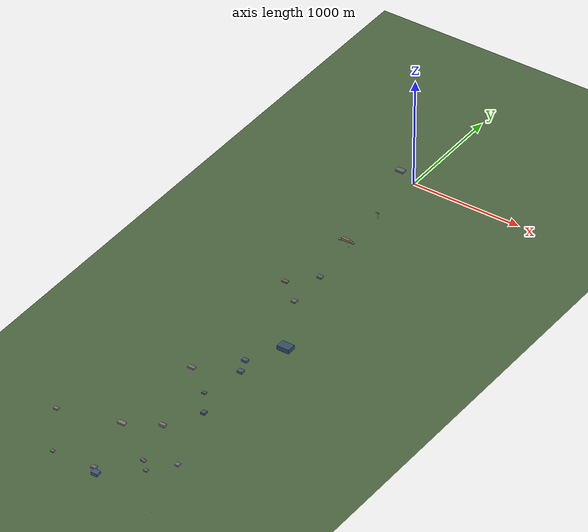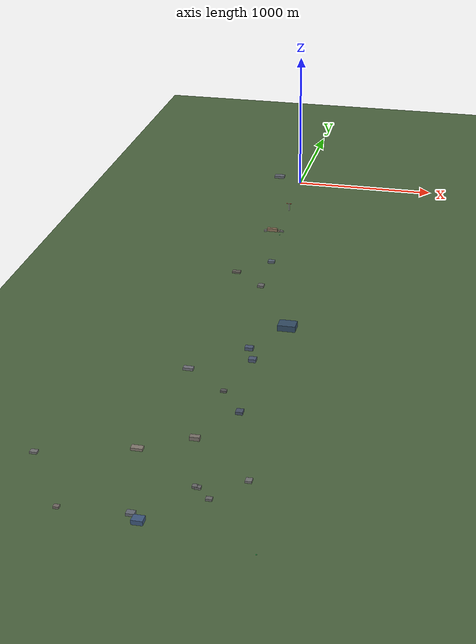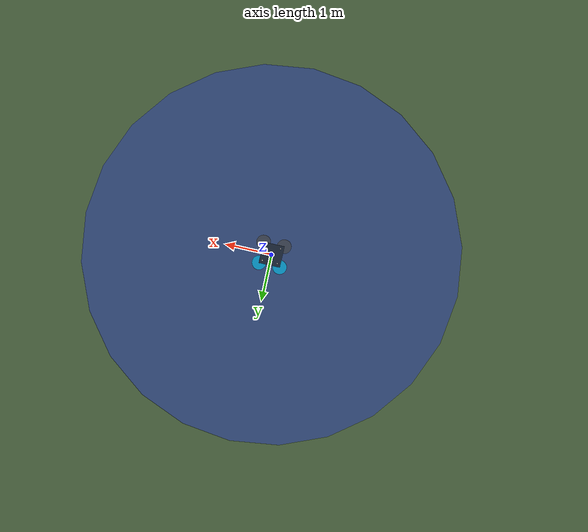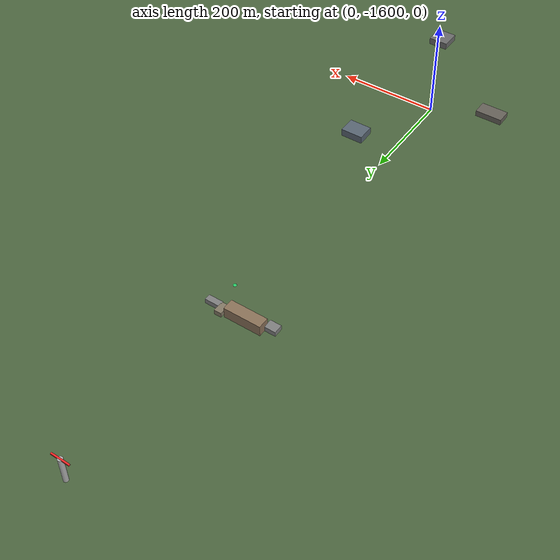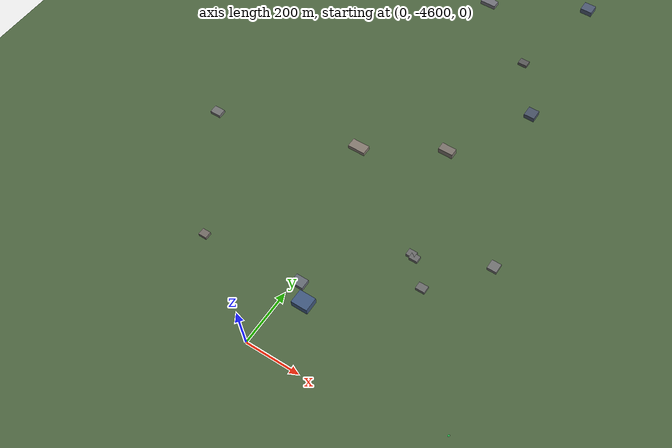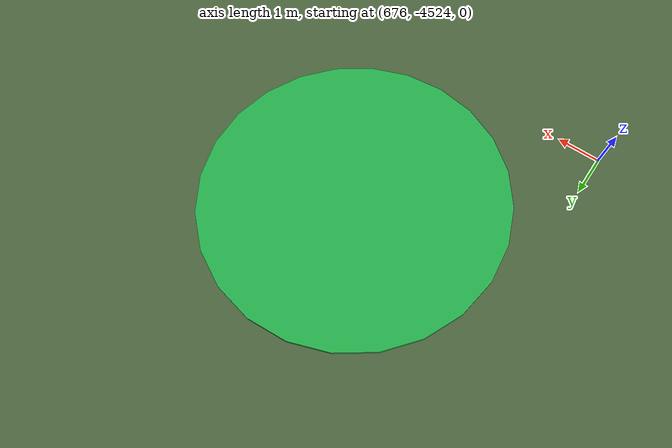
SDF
<?xml version="1.0" ?>
<sdf version="1.8">
  <world name="skynav_kurumbapalayam">
    <physics name="1ms" type="ode">
      <max_step_size>0.001</max_step_size>
      <real_time_factor>1.0</real_time_factor>
      <real_time_update_rate>1000</real_time_update_rate>
      <ode>
        <solver>
          <type>quick</type>
          <iters>50</iters>
          <sor>1.3</sor>
        </solver>
        <constraints>
          <cfm>0.0</cfm>
          <erp>0.2</erp>
          <contact_max_correcting_vel>100.0</contact_max_correcting_vel>
          <contact_surface_layer>0.001</contact_surface_layer>
        </constraints>
      </ode>
    </physics>

    <!-- Standard Gazebo System Plugins -->
    <plugin filename="gz-sim-physics-system" name="gz::sim::systems::Physics"/>
    <plugin filename="gz-sim-user-commands-system" name="gz::sim::systems::UserCommands"/>
    <plugin filename="gz-sim-scene-broadcaster-system" name="gz::sim::systems::SceneBroadcaster"/>
    <plugin filename="gz-sim-sensors-system" name="gz::sim::systems::Sensors">
      <render_engine>ogre2</render_engine>
    </plugin>
    <plugin filename="gz-sim-imu-system" name="gz::sim::systems::Imu"/>
    <plugin filename="gz-sim-navsat-system" name="gz::sim::systems::NavSat"/>
    <plugin filename="gz-sim-altimeter-system" name="gz::sim::systems::Altimeter"/>

    <!-- Geographic Origin: SkyHub Kurumbapalayam, Coimbatore, India -->
    <spherical_coordinates>
      <surface_model>EARTH_WGS84</surface_model>
      <latitude_deg>11.113200</latitude_deg>
      <longitude_deg>77.027700</longitude_deg>
      <elevation>374.0</elevation>
      <heading_deg>0.0</heading_deg>
    </spherical_coordinates>

    <!-- Sun Lighting -->
    <light type="directional" name="sun">
      <cast_shadows>true</cast_shadows>
      <pose>0 0 500 0.3 0.6 0</pose>
      <diffuse>0.9 0.9 0.85 1</diffuse>
      <specular>0.2 0.2 0.2 1</specular>
      <attenuation>
        <range>1000</range>
        <constant>0.9</constant>
        <linear>0.01</linear>
        <quadratic>0.001</quadratic>
      </attenuation>
      <direction>-0.4 0.2 -1.0</direction>
    </light>

    <!-- Ground Plane (Coimbatore Kurumbapalayam Base Elevation) -->
    <model name="kurumbapalayam_ground">
      <static>true</static>
      <link name="ground_link">
        <collision name="ground_collision">
          <geometry>
            <plane>
              <normal>0 0 1</normal>
              <size>10000 10000</size>
            </plane>
          </geometry>
          <surface>
            <friction>
              <ode>
                <mu>100</mu>
                <mu2>50</mu2>
              </ode>
            </friction>
          </surface>
        </collision>
        <visual name="ground_visual">
          <geometry>
            <plane>
              <normal>0 0 1</normal>
              <size>10000 10000</size>
            </plane>
          </geometry>
          <material>
            <ambient>0.25 0.35 0.22 1.0</ambient>
            <diffuse>0.3 0.4 0.25 1.0</diffuse>
          </material>
        </visual>
      </link>
    </model>

    <!-- SkyHub Kurumbapalayam Launch & Docking Base -->
    <model name="skyhub_launch_docking_pad">
      <static>true</static>
      <pose>0 0 0.1 0 0 0</pose>
      <link name="pad_link">
        <collision name="pad_col">
          <geometry>
            <cylinder>
              <radius>4.0</radius>
              <length>0.2</length>
            </cylinder>
          </geometry>
        </collision>
        <visual name="pad_vis">
          <geometry>
            <cylinder>
              <radius>4.0</radius>
              <length>0.2</length>
            </cylinder>
          </geometry>
          <material>
            <ambient>0.1 0.15 0.25 1.0</ambient>
            <diffuse>0.2 0.3 0.5 1.0</diffuse>
          </material>
        </visual>
      </link>
    </model>

    <!-- Autonomous SkyNav Delivery UAV (Spawned on SkyHub Kurumbapalayam Launch Pad) -->
    <include>
      <uri>model://skynav_quad</uri>
      <name>skynav_quad</name>
      <pose>0 0 0.25 0 0 0</pose>
    </include>

    <!-- OSM Building: osm_building_kurumbapalayam_logistics (Footprint: 75m x 45m, Height: 18m) -->
    <model name="osm_building_kurumbapalayam_logistics">
      <static>true</static>
      <pose>-180 80 9 0 0 0</pose>
      <link name="link">
        <collision name="col">
          <geometry>
            <box>
              <size>75 45 18</size>
            </box>
          </geometry>
        </collision>
        <visual name="vis">
          <geometry>
            <box>
              <size>75 45 18</size>
            </box>
          </geometry>
          <material>
            <ambient>0.4 0.42 0.45 1</ambient>
            <diffuse>0.4 0.42 0.45 1</diffuse>
          </material>
        </visual>
      </link>
    </model>
    <!-- OSM Building: osm_building_kvimis_campus (Footprint: 73m x 22m, Height: 22m) -->
    <model name="osm_building_kvimis_campus">
      <static>true</static>
      <pose>-19 -939 11 0 0 0</pose>
      <link name="link">
        <collision name="col">
          <geometry>
            <box>
              <size>73 22 22</size>
            </box>
          </geometry>
        </collision>
        <visual name="vis">
          <geometry>
            <box>
              <size>73 22 22</size>
            </box>
          </geometry>
          <material>
            <ambient>0.55 0.45 0.35 1</ambient>
            <diffuse>0.55 0.45 0.35 1</diffuse>
          </material>
        </visual>
      </link>
    </model>
    <!-- OSM Building: osm_building_kvimis_hostel_east (Footprint: 29m x 12m, Height: 10m) -->
    <model name="osm_building_kvimis_hostel_east">
      <static>true</static>
      <pose>48 -941 5 0 0 0</pose>
      <link name="link">
        <collision name="col">
          <geometry>
            <box>
              <size>29 12 10</size>
            </box>
          </geometry>
        </collision>
        <visual name="vis">
          <geometry>
            <box>
              <size>29 12 10</size>
            </box>
          </geometry>
          <material>
            <ambient>0.5 0.5 0.5 1</ambient>
            <diffuse>0.5 0.5 0.5 1</diffuse>
          </material>
        </visual>
      </link>
    </model>
    <!-- OSM Building: osm_building_kvimis_cafeteria (Footprint: 14m x 22m, Height: 10m) -->
    <model name="osm_building_kvimis_cafeteria">
      <static>true</static>
      <pose>28 -935 5 0 0 0</pose>
      <link name="link">
        <collision name="col">
          <geometry>
            <box>
              <size>14 22 10</size>
            </box>
          </geometry>
        </collision>
        <visual name="vis">
          <geometry>
            <box>
              <size>14 22 10</size>
            </box>
          </geometry>
          <material>
            <ambient>0.52 0.48 0.4 1</ambient>
            <diffuse>0.52 0.48 0.4 1</diffuse>
          </material>
        </visual>
      </link>
    </model>
    <!-- OSM Building: osm_building_kvimis_hostel_west (Footprint: 22m x 18m, Height: 10m) -->
    <model name="osm_building_kvimis_hostel_west">
      <static>true</static>
      <pose>-66 -950 5 0 0 0</pose>
      <link name="link">
        <collision name="col">
          <geometry>
            <box>
              <size>22 18 10</size>
            </box>
          </geometry>
        </collision>
        <visual name="vis">
          <geometry>
            <box>
              <size>22 18 10</size>
            </box>
          </geometry>
          <material>
            <ambient>0.5 0.5 0.5 1</ambient>
            <diffuse>0.5 0.5 0.5 1</diffuse>
          </material>
        </visual>
      </link>
    </model>
    <!-- OSM Building: osm_building_sh165_transit_hub (Footprint: 45m x 35m, Height: 15m) -->
    <model name="osm_building_sh165_transit_hub">
      <static>true</static>
      <pose>85 -1450 7.5 0 0 0</pose>
      <link name="link">
        <collision name="col">
          <geometry>
            <box>
              <size>45 35 15</size>
            </box>
          </geometry>
        </collision>
        <visual name="vis">
          <geometry>
            <box>
              <size>45 35 15</size>
            </box>
          </geometry>
          <material>
            <ambient>0.35 0.4 0.45 1</ambient>
            <diffuse>0.35 0.4 0.45 1</diffuse>
          </material>
        </visual>
      </link>
    </model>
    <!-- OSM Building: osm_building_annur_road_logistics (Footprint: 55m x 30m, Height: 12m) -->
    <model name="osm_building_annur_road_logistics">
      <static>true</static>
      <pose>-110 -1650 6 0 0 0</pose>
      <link name="link">
        <collision name="col">
          <geometry>
            <box>
              <size>55 30 12</size>
            </box>
          </geometry>
        </collision>
        <visual name="vis">
          <geometry>
            <box>
              <size>55 30 12</size>
            </box>
          </geometry>
          <material>
            <ambient>0.4 0.38 0.35 1</ambient>
            <diffuse>0.4 0.38 0.35 1</diffuse>
          </material>
        </visual>
      </link>
    </model>
    <!-- OSM Building: osm_building_suburban_depot (Footprint: 40m x 40m, Height: 14m) -->
    <model name="osm_building_suburban_depot">
      <static>true</static>
      <pose>95 -1820 7 0 0 0</pose>
      <link name="link">
        <collision name="col">
          <geometry>
            <box>
              <size>40 40 14</size>
            </box>
          </geometry>
        </collision>
        <visual name="vis">
          <geometry>
            <box>
              <size>40 40 14</size>
            </box>
          </geometry>
          <material>
            <ambient>0.42 0.42 0.42 1</ambient>
            <diffuse>0.42 0.42 0.42 1</diffuse>
          </material>
        </visual>
      </link>
    </model>
    <!-- OSM Building: osm_building_svb_tech_park_tower (Footprint: 110m x 80m, Height: 38m) -->
    <model name="osm_building_svb_tech_park_tower">
      <static>true</static>
      <pose>380 -2350 19 0 0 0</pose>
      <link name="link">
        <collision name="col">
          <geometry>
            <box>
              <size>110 80 38</size>
            </box>
          </geometry>
        </collision>
        <visual name="vis">
          <geometry>
            <box>
              <size>110 80 38</size>
            </box>
          </geometry>
          <material>
            <ambient>0.2 0.3 0.4 1</ambient>
            <diffuse>0.2 0.3 0.4 1</diffuse>
          </material>
        </visual>
      </link>
    </model>
    <!-- OSM Building: osm_building_tech_zone_block_a (Footprint: 50m x 35m, Height: 20m) -->
    <model name="osm_building_tech_zone_block_a">
      <static>true</static>
      <pose>210 -2650 10 0 0 0</pose>
      <link name="link">
        <collision name="col">
          <geometry>
            <box>
              <size>50 35 20</size>
            </box>
          </geometry>
        </collision>
        <visual name="vis">
          <geometry>
            <box>
              <size>50 35 20</size>
            </box>
          </geometry>
          <material>
            <ambient>0.3 0.35 0.45 1</ambient>
            <diffuse>0.3 0.35 0.45 1</diffuse>
          </material>
        </visual>
      </link>
    </model>
    <!-- OSM Building: osm_building_tech_zone_block_b (Footprint: 45m x 40m, Height: 20m) -->
    <model name="osm_building_tech_zone_block_b">
      <static>true</static>
      <pose>260 -2780 10 0 0 0</pose>
      <link name="link">
        <collision name="col">
          <geometry>
            <box>
              <size>45 40 20</size>
            </box>
          </geometry>
        </collision>
        <visual name="vis">
          <geometry>
            <box>
              <size>45 40 20</size>
            </box>
          </geometry>
          <material>
            <ambient>0.3 0.35 0.45 1</ambient>
            <diffuse>0.3 0.35 0.45 1</diffuse>
          </material>
        </visual>
      </link>
    </model>
    <!-- OSM Building: osm_building_sh165_commercial_center (Footprint: 60m x 30m, Height: 16m) -->
    <model name="osm_building_sh165_commercial_center">
      <static>true</static>
      <pose>-80 -2950 8 0 0 0</pose>
      <link name="link">
        <collision name="col">
          <geometry>
            <box>
              <size>60 30 16</size>
            </box>
          </geometry>
        </collision>
        <visual name="vis">
          <geometry>
            <box>
              <size>60 30 16</size>
            </box>
          </geometry>
          <material>
            <ambient>0.45 0.45 0.48 1</ambient>
            <diffuse>0.45 0.45 0.48 1</diffuse>
          </material>
        </visual>
      </link>
    </model>
    <!-- OSM Building: osm_building_coimbatore_north_substation (Footprint: 35m x 25m, Height: 12m) -->
    <model name="osm_building_coimbatore_north_substation">
      <static>true</static>
      <pose>180 -3150 6 0 0 0</pose>
      <link name="link">
        <collision name="col">
          <geometry>
            <box>
              <size>35 25 12</size>
            </box>
          </geometry>
        </collision>
        <visual name="vis">
          <geometry>
            <box>
              <size>35 25 12</size>
            </box>
          </geometry>
          <material>
            <ambient>0.35 0.35 0.35 1</ambient>
            <diffuse>0.35 0.35 0.35 1</diffuse>
          </material>
        </visual>
      </link>
    </model>
    <!-- OSM Building: osm_building_tech_park_annex (Footprint: 40m x 40m, Height: 18m) -->
    <model name="osm_building_tech_park_annex">
      <static>true</static>
      <pose>320 -3350 9 0 0 0</pose>
      <link name="link">
        <collision name="col">
          <geometry>
            <box>
              <size>40 40 18</size>
            </box>
          </geometry>
        </collision>
        <visual name="vis">
          <geometry>
            <box>
              <size>40 40 18</size>
            </box>
          </geometry>
          <material>
            <ambient>0.28 0.32 0.4 1</ambient>
            <diffuse>0.28 0.32 0.4 1</diffuse>
          </material>
        </visual>
      </link>
    </model>
    <!-- OSM Building: osm_building_kalapatti_north_apartments (Footprint: 55m x 30m, Height: 22m) -->
    <model name="osm_building_kalapatti_north_apartments">
      <static>true</static>
      <pose>150 -3650 11 0 0 0</pose>
      <link name="link">
        <collision name="col">
          <geometry>
            <box>
              <size>55 30 22</size>
            </box>
          </geometry>
        </collision>
        <visual name="vis">
          <geometry>
            <box>
              <size>55 30 22</size>
            </box>
          </geometry>
          <material>
            <ambient>0.48 0.45 0.42 1</ambient>
            <diffuse>0.48 0.45 0.42 1</diffuse>
          </material>
        </visual>
      </link>
    </model>
    <!-- OSM Building: osm_building_kalapatti_school_campus (Footprint: 65m x 35m, Height: 15m) -->
    <model name="osm_building_kalapatti_school_campus">
      <static>true</static>
      <pose>-120 -3800 7.5 0 0 0</pose>
      <link name="link">
        <collision name="col">
          <geometry>
            <box>
              <size>65 35 15</size>
            </box>
          </geometry>
        </collision>
        <visual name="vis">
          <geometry>
            <box>
              <size>65 35 15</size>
            </box>
          </geometry>
          <material>
            <ambient>0.52 0.48 0.44 1</ambient>
            <diffuse>0.52 0.48 0.44 1</diffuse>
          </material>
        </visual>
      </link>
    </model>
    <!-- OSM Building: osm_building_kalapatti_retail_cluster (Footprint: 35m x 35m, Height: 12m) -->
    <model name="osm_building_kalapatti_retail_cluster">
      <static>true</static>
      <pose>515 -3963 6 0 0 0</pose>
      <link name="link">
        <collision name="col">
          <geometry>
            <box>
              <size>35 35 12</size>
            </box>
          </geometry>
        </collision>
        <visual name="vis">
          <geometry>
            <box>
              <size>35 35 12</size>
            </box>
          </geometry>
          <material>
            <ambient>0.45 0.45 0.45 1</ambient>
            <diffuse>0.45 0.45 0.45 1</diffuse>
          </material>
        </visual>
      </link>
    </model>
    <!-- OSM Building: osm_building_kalapatti_west_residential (Footprint: 40m x 30m, Height: 12m) -->
    <model name="osm_building_kalapatti_west_residential">
      <static>true</static>
      <pose>-635 -3939 6 0 0 0</pose>
      <link name="link">
        <collision name="col">
          <geometry>
            <box>
              <size>40 30 12</size>
            </box>
          </geometry>
        </collision>
        <visual name="vis">
          <geometry>
            <box>
              <size>40 30 12</size>
            </box>
          </geometry>
          <material>
            <ambient>0.45 0.45 0.45 1</ambient>
            <diffuse>0.45 0.45 0.45 1</diffuse>
          </material>
        </visual>
      </link>
    </model>
    <!-- OSM Building: osm_building_lemon_tree_hotel (Footprint: 60m x 50m, Height: 26m) -->
    <model name="osm_building_lemon_tree_hotel">
      <static>true</static>
      <pose>73 -4397 13 0 0 0</pose>
      <link name="link">
        <collision name="col">
          <geometry>
            <box>
              <size>60 50 26</size>
            </box>
          </geometry>
        </collision>
        <visual name="vis">
          <geometry>
            <box>
              <size>60 50 26</size>
            </box>
          </geometry>
          <material>
            <ambient>0.25 0.35 0.5 1</ambient>
            <diffuse>0.25 0.35 0.5 1</diffuse>
          </material>
        </visual>
      </link>
    </model>
    <!-- OSM Building: osm_building_kalapatti_east_block_1 (Footprint: 30m x 25m, Height: 12m) -->
    <model name="osm_building_kalapatti_east_block_1">
      <static>true</static>
      <pose>265 -4065 6 0 0 0</pose>
      <link name="link">
        <collision name="col">
          <geometry>
            <box>
              <size>30 25 12</size>
            </box>
          </geometry>
        </collision>
        <visual name="vis">
          <geometry>
            <box>
              <size>30 25 12</size>
            </box>
          </geometry>
          <material>
            <ambient>0.42 0.42 0.42 1</ambient>
            <diffuse>0.42 0.42 0.42 1</diffuse>
          </material>
        </visual>
      </link>
    </model>
    <!-- OSM Building: osm_building_kalapatti_east_block_2 (Footprint: 32m x 24m, Height: 12m) -->
    <model name="osm_building_kalapatti_east_block_2">
      <static>true</static>
      <pose>281 -4072 6 0 0 0</pose>
      <link name="link">
        <collision name="col">
          <geometry>
            <box>
              <size>32 24 12</size>
            </box>
          </geometry>
        </collision>
        <visual name="vis">
          <geometry>
            <box>
              <size>32 24 12</size>
            </box>
          </geometry>
          <material>
            <ambient>0.42 0.42 0.42 1</ambient>
            <diffuse>0.42 0.42 0.42 1</diffuse>
          </material>
        </visual>
      </link>
    </model>
    <!-- OSM Building: osm_building_kalapatti_east_block_3 (Footprint: 34m x 26m, Height: 12m) -->
    <model name="osm_building_kalapatti_east_block_3">
      <static>true</static>
      <pose>359 -4153 6 0 0 0</pose>
      <link name="link">
        <collision name="col">
          <geometry>
            <box>
              <size>34 26 12</size>
            </box>
          </geometry>
        </collision>
        <visual name="vis">
          <geometry>
            <box>
              <size>34 26 12</size>
            </box>
          </geometry>
          <material>
            <ambient>0.42 0.42 0.42 1</ambient>
            <diffuse>0.42 0.42 0.42 1</diffuse>
          </material>
        </visual>
      </link>
    </model>
    <!-- OSM Building: osm_building_kalapatti_south_west_res (Footprint: 30m x 25m, Height: 12m) -->
    <model name="osm_building_kalapatti_south_west_res">
      <static>true</static>
      <pose>-351 -4365 6 0 0 0</pose>
      <link name="link">
        <collision name="col">
          <geometry>
            <box>
              <size>30 25 12</size>
            </box>
          </geometry>
        </collision>
        <visual name="vis">
          <geometry>
            <box>
              <size>30 25 12</size>
            </box>
          </geometry>
          <material>
            <ambient>0.45 0.42 0.4 1</ambient>
            <diffuse>0.45 0.42 0.4 1</diffuse>
          </material>
        </visual>
      </link>
    </model>
    <!-- OSM Building: osm_building_kalapatti_terminal_commercial (Footprint: 45m x 35m, Height: 15m) -->
    <model name="osm_building_kalapatti_terminal_commercial">
      <static>true</static>
      <pose>19 -4344 7.5 0 0 0</pose>
      <link name="link">
        <collision name="col">
          <geometry>
            <box>
              <size>45 35 15</size>
            </box>
          </geometry>
        </collision>
        <visual name="vis">
          <geometry>
            <box>
              <size>45 35 15</size>
            </box>
          </geometry>
          <material>
            <ambient>0.4 0.42 0.46 1</ambient>
            <diffuse>0.4 0.42 0.46 1</diffuse>
          </material>
        </visual>
      </link>
    </model>

    <!-- Customer Destination Drop Pad (1 km Destination: Kurumbapalayam South / KVIMIS Drop Zone) -->
    <!-- WGS84: 11.104200 N, 77.028112 E (Local ENU Pose: x=45.0m East, y=-995.0m South, z=0.08m) -->
    <model name="customer_1km_drop_pad">
      <static>true</static>
      <pose>45.0 -995.0 0.08 0 0 0</pose>
      <link name="pad_link">
        <collision name="col">
          <geometry>
            <cylinder>
              <radius>3.5</radius>
              <length>0.1</length>
            </cylinder>
          </geometry>
        </collision>
        <visual name="vis">
          <geometry>
            <cylinder>
              <radius>3.5</radius>
              <length>0.1</length>
            </cylinder>
          </geometry>
          <material>
            <ambient>0.1 0.6 0.3 1</ambient>
            <diffuse>0.15 0.8 0.4 1</diffuse>
          </material>
        </visual>
      </link>
    </model>

    <!-- Secondary Customer Destination Drop Pad (Kalapatti South Drop Zone: 4.71 km) -->
    <model name="customer_kalapatti_drop_pad">
      <static>true</static>
      <pose>680 -4520 0.05 0 0 0</pose>
      <link name="pad_link">
        <collision name="col">
          <geometry>
            <cylinder>
              <radius>3.5</radius>
              <length>0.1</length>
            </cylinder>
          </geometry>
        </collision>
        <visual name="vis">
          <geometry>
            <cylinder>
              <radius>3.5</radius>
              <length>0.1</length>
            </cylinder>
          </geometry>
          <material>
            <ambient>0.1 0.5 0.2 1</ambient>
            <diffuse>0.15 0.7 0.3 1</diffuse>
          </material>
        </visual>
      </link>
    </model>

    <!-- Physical Controlled Test Obstacle: Tower Construction Crane (OBS-CRANE-01) -->
    <!-- Positioned along the 1 km delivery airway at y=-550m to trigger real LaserScan detection & detour -->
    <!-- WGS84: 11.1082 N, 77.0279 E (Local ENU Pose: x=22.0m East, y=-550.0m South, z=27.5m, Height=55m) -->
    <model name="controlled_test_obstacle_crane">
      <static>true</static>
      <pose>22.0 -550.0 27.5 0 0 0</pose>
      <link name="crane_mast_link">
        <collision name="crane_mast_col">
          <geometry>
            <cylinder>
              <radius>4.5</radius>
              <length>55.0</length>
            </cylinder>
          </geometry>
        </collision>
        <visual name="crane_mast_vis">
          <geometry>
            <cylinder>
              <radius>4.5</radius>
              <length>55.0</length>
            </cylinder>
          </geometry>
        </visual>
        <!-- Crane Jib Arm (Horizontal Boom spanning 36m diameter / 18m radius) -->
        <collision name="crane_jib_col">
          <pose>0 0 26.5 0 0 0</pose>
          <geometry>
            <box>
              <size>36.0 3.0 2.5</size>
            </box>
          </geometry>
        </collision>
        <visual name="crane_jib_vis">
          <pose>0 0 26.5 0 0 0</pose>
          <geometry>
            <box>
              <size>36.0 3.0 2.5</size>
            </box>
          </geometry>
          <material>
            <ambient>0.9 0.1 0.1 1.0</ambient>
            <diffuse>1.0 0.15 0.15 1.0</diffuse>
          </material>
        </visual>
      </link>
    </model>

  </world>
</sdf>

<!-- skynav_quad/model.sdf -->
<sdf version="1.8">
  <model name="skynav_quad">
    <pose>0 0 0.15 0 0 0</pose>
    <static>false</static>

    <!-- Main Airframe Fuselage Link -->
    <link name="base_link">
      <inertial>
        <mass>2.45</mass>
        <inertia>
          <ixx>0.0347563</ixx>
          <ixy>0</ixy>
          <ixz>0</ixz>
          <iyy>0.0458929</iyy>
          <iyz>0</iyz>
          <izz>0.05887</izz>
        </inertia>
      </inertial>

      <collision name="fuselage_col">
        <geometry>
          <box>
            <size>0.45 0.45 0.18</size>
          </box>
        </geometry>
      </collision>

      <visual name="fuselage_vis">
        <geometry>
          <box>
            <size>0.45 0.45 0.18</size>
          </box>
        </geometry>
        <material>
          <ambient>0.05 0.08 0.12 1.0</ambient>
          <diffuse>0.1 0.15 0.22 1.0</diffuse>
        </material>
      </visual>

      <!-- Carbon Fiber Arm Visuals -->
      <visual name="arm_front_right">
        <pose>0.16 0.16 0 0 0 0.785</pose>
        <geometry>
          <cylinder>
            <radius>0.015</radius>
            <length>0.28</length>
          </cylinder>
        </geometry>
      </visual>

      <visual name="arm_front_left">
        <pose>-0.16 0.16 0 0 0 -0.785</pose>
        <geometry>
          <cylinder>
            <radius>0.015</radius>
            <length>0.28</length>
          </cylinder>
        </geometry>
      </visual>

      <visual name="arm_back_left">
        <pose>-0.16 -0.16 0 0 0 0.785</pose>
        <geometry>
          <cylinder>
            <radius>0.015</radius>
            <length>0.28</length>
          </cylinder>
        </geometry>
      </visual>

      <visual name="arm_back_right">
        <pose>0.16 -0.16 0 0 0 -0.785</pose>
        <geometry>
          <cylinder>
            <radius>0.015</radius>
            <length>0.28</length>
          </cylinder>
        </geometry>
      </visual>

      <!-- Sensor: 6-Axis IMU Sensor -->
      <sensor name="imu_sensor" type="imu">
        <always_on>1</always_on>
        <update_rate>250</update_rate>
        <topic>/skynav/sensors/imu</topic>
        <imu>
          <angular_velocity>
            <x><noise type="gaussian"><mean>0.0</mean><stddev>0.0002</stddev></noise></x>
            <y><noise type="gaussian"><mean>0.0</mean><stddev>0.0002</stddev></noise></y>
            <z><noise type="gaussian"><mean>0.0</mean><stddev>0.0002</stddev></noise></z>
          </angular_velocity>
          <linear_acceleration>
            <x><noise type="gaussian"><mean>0.0</mean><stddev>0.017</stddev></noise></x>
            <y><noise type="gaussian"><mean>0.0</mean><stddev>0.017</stddev></noise></y>
            <z><noise type="gaussian"><mean>0.0</mean><stddev>0.017</stddev></noise></z>
          </linear_acceleration>
        </imu>
      </sensor>

      <!-- Sensor: Navigational RTK-GPS Sensor -->
      <sensor name="nav_gps" type="navsat">
        <always_on>1</always_on>
        <update_rate>10</update_rate>
        <topic>/skynav/sensors/gps</topic>
      </sensor>

      <!-- Sensor: Downward LiDAR Altimeter (0 - 50m AGL for landing) -->
      <sensor name="downward_lidar" type="altimeter">
        <always_on>1</always_on>
        <update_rate>50</update_rate>
        <topic>/skynav/sensors/lidar_alt</topic>
        <altimeter>
          <vertical_position>
            <noise type="gaussian"><mean>0.0</mean><stddev>0.01</stddev></noise>
          </vertical_position>
          <vertical_velocity>
            <noise type="gaussian"><mean>0.0</mean><stddev>0.01</stddev></noise>
          </vertical_velocity>
        </altimeter>
      </sensor>

      <!-- Sensor: Forward Horizontal Obstacle LiDAR (20Hz, 90 deg FOV, 60m range) -->
      <sensor name="forward_obstacle_lidar" type="gpu_lidar">
        <pose>0.18 0 0.05 0 0 0</pose>
        <always_on>1</always_on>
        <update_rate>20</update_rate>
        <ray>
          <scan>
            <horizontal>
              <samples>180</samples>
              <resolution>1</resolution>
              <min_angle>-0.785398</min_angle>
              <max_angle>0.785398</max_angle>
            </horizontal>
          </scan>
          <range>
            <min>0.2</min>
            <max>60.0</max>
            <resolution>0.05</resolution>
          </range>
        </ray>
        <topic>/skynav/sensors/lidar_obstacle</topic>
      </sensor>
    </link>

    <!-- Rotor 1 (Front Right - CCW) -->
    <link name="rotor_0">
      <pose>0.22 0.22 0.08 0 0 0</pose>
      <inertial>
        <mass>0.025</mass>
        <inertia><ixx>9.75e-06</ixx><iyy>0.0001667</iyy><izz>0.000176</izz></inertia>
      </inertial>
      <visual name="rotor_0_vis">
        <geometry><cylinder><radius>0.15</radius><length>0.008</length></cylinder></geometry>
        <material><ambient>0 0.8 1 0.7</ambient><diffuse>0 0.8 1 0.7</diffuse></material>
      </visual>
    </link>
    <joint name="rotor_0_joint" type="revolute">
      <parent>base_link</parent>
      <child>rotor_0</child>
      <axis><xyz>0 0 1</xyz></axis>
    </joint>

    <!-- Rotor 2 (Front Left - CW) -->
    <link name="rotor_1">
      <pose>-0.22 0.22 0.08 0 0 0</pose>
      <inertial>
        <mass>0.025</mass>
        <inertia><ixx>9.75e-06</ixx><iyy>0.0001667</iyy><izz>0.000176</izz></inertia>
      </inertial>
      <visual name="rotor_1_vis">
        <geometry><cylinder><radius>0.15</radius><length>0.008</length></cylinder></geometry>
        <material><ambient>0 0.8 1 0.7</ambient><diffuse>0 0.8 1 0.7</diffuse></material>
      </visual>
    </link>
    <joint name="rotor_1_joint" type="revolute">
      <parent>base_link</parent>
      <child>rotor_1</child>
      <axis><xyz>0 0 1</xyz></axis>
    </joint>

    <!-- Rotor 3 (Back Left - CCW) -->
    <link name="rotor_2">
      <pose>-0.22 -0.22 0.08 0 0 0</pose>
      <inertial>
        <mass>0.025</mass>
        <inertia><ixx>9.75e-06</ixx><iyy>0.0001667</iyy><izz>0.000176</izz></inertia>
      </inertial>
      <visual name="rotor_2_vis">
        <geometry><cylinder><radius>0.15</radius><length>0.008</length></cylinder></geometry>
        <material><ambient>0.2 0.2 0.2 0.7</ambient><diffuse>0.3 0.3 0.3 0.7</diffuse></material>
      </visual>
    </link>
    <joint name="rotor_2_joint" type="revolute">
      <parent>base_link</parent>
      <child>rotor_2</child>
      <axis><xyz>0 0 1</xyz></axis>
    </joint>

    <!-- Rotor 4 (Back Right - CW) -->
    <link name="rotor_3">
      <pose>0.22 -0.22 0.08 0 0 0</pose>
      <inertial>
        <mass>0.025</mass>
        <inertia><ixx>9.75e-06</ixx><iyy>0.0001667</iyy><izz>0.000176</izz></inertia>
      </inertial>
      <visual name="rotor_3_vis">
        <geometry><cylinder><radius>0.15</radius><length>0.008</length></cylinder></geometry>
        <material><ambient>0.2 0.2 0.2 0.7</ambient><diffuse>0.3 0.3 0.3 0.7</diffuse></material>
      </visual>
    </link>
    <joint name="rotor_3_joint" type="revolute">
      <parent>base_link</parent>
      <child>rotor_3</child>
      <axis><xyz>0 0 1</xyz></axis>
    </joint>

    <!-- Multicopter Motor Dynamics Plugins (4 Rotors) -->
    <plugin filename="gz-sim-multicopter-motor-model-system" name="gz::sim::systems::MulticopterMotorModel">
      <robotNamespace>/skynav</robotNamespace>
      <jointName>rotor_0_joint</jointName>
      <linkName>rotor_0</linkName>
      <turningDirection>ccw</turningDirection>
      <actuator_number>0</actuator_number>
      <motorConstant>8.54858e-06</motorConstant>
      <momentConstant>0.06</momentConstant>
      <maxRotVelocity>1100</maxRotVelocity>
      <rotorDragCoefficient>8.06428e-05</rotorDragCoefficient>
      <rollingMomentCoefficient>1e-06</rollingMomentCoefficient>
      <rotorVelocitySlowdownSim>10</rotorVelocitySlowdownSim>
      <motorType>velocity</motorType>
    </plugin>

    <plugin filename="gz-sim-multicopter-motor-model-system" name="gz::sim::systems::MulticopterMotorModel">
      <robotNamespace>/skynav</robotNamespace>
      <jointName>rotor_1_joint</jointName>
      <linkName>rotor_1</linkName>
      <turningDirection>cw</turningDirection>
      <actuator_number>1</actuator_number>
      <motorConstant>8.54858e-06</motorConstant>
      <momentConstant>0.06</momentConstant>
      <maxRotVelocity>1100</maxRotVelocity>
      <rotorDragCoefficient>8.06428e-05</rotorDragCoefficient>
      <rollingMomentCoefficient>1e-06</rollingMomentCoefficient>
      <rotorVelocitySlowdownSim>10</rotorVelocitySlowdownSim>
      <motorType>velocity</motorType>
    </plugin>

    <plugin filename="gz-sim-multicopter-motor-model-system" name="gz::sim::systems::MulticopterMotorModel">
      <robotNamespace>/skynav</robotNamespace>
      <jointName>rotor_2_joint</jointName>
      <linkName>rotor_2</linkName>
      <turningDirection>ccw</turningDirection>
      <actuator_number>2</actuator_number>
      <motorConstant>8.54858e-06</motorConstant>
      <momentConstant>0.06</momentConstant>
      <maxRotVelocity>1100</maxRotVelocity>
      <rotorDragCoefficient>8.06428e-05</rotorDragCoefficient>
      <rollingMomentCoefficient>1e-06</rollingMomentCoefficient>
      <rotorVelocitySlowdownSim>10</rotorVelocitySlowdownSim>
      <motorType>velocity</motorType>
    </plugin>

    <plugin filename="gz-sim-multicopter-motor-model-system" name="gz::sim::systems::MulticopterMotorModel">
      <robotNamespace>/skynav</robotNamespace>
      <jointName>rotor_3_joint</jointName>
      <linkName>rotor_3</linkName>
      <turningDirection>cw</turningDirection>
      <actuator_number>3</actuator_number>
      <motorConstant>8.54858e-06</motorConstant>
      <momentConstant>0.06</momentConstant>
      <maxRotVelocity>1100</maxRotVelocity>
      <rotorDragCoefficient>8.06428e-05</rotorDragCoefficient>
      <rollingMomentCoefficient>1e-06</rollingMomentCoefficient>
      <rotorVelocitySlowdownSim>10</rotorVelocitySlowdownSim>
      <motorType>velocity</motorType>
    </plugin>

    <!-- Odometry Publisher Plugin -->
    <plugin
      filename="gz-sim-odometry-publisher-system"
      name="gz::sim::systems::OdometryPublisher">
      <dimensions>3</dimensions>
      <odom_frame>odom</odom_frame>
      <robot_base_frame>skynav_quad/base_link</robot_base_frame>
      <odom_topic>/skynav/odometry</odom_topic>
    </plugin>

    <!-- Multicopter Flight Dynamics Velocity Control Plugin -->
    <plugin
      filename="gz-sim-multicopter-control-system"
      name="gz::sim::systems::MulticopterVelocityControl">
      <robotNamespace>skynav</robotNamespace>
      <commandSubTopic>cmd_vel</commandSubTopic>
      <enableSubTopic>enable</enableSubTopic>
      <comLinkName>base_link</comLinkName>
      <velocityGain>2.7 2.7 2.7</velocityGain>
      <attitudeGain>2.0 2.0 2.0</attitudeGain>
      <angularRateGain>0.4 0.4 0.4</angularRateGain>
      <maximumLinearAcceleration>3.0 3.0 3.0</maximumLinearAcceleration>
      <rotorConfiguration>
        <rotor>
          <jointName>rotor_0_joint</jointName>
          <forceConstant>8.54858e-06</forceConstant>
          <momentConstant>0.06</momentConstant>
          <direction>1</direction>
        </rotor>
        <rotor>
          <jointName>rotor_1_joint</jointName>
          <forceConstant>8.54858e-06</forceConstant>
          <momentConstant>0.06</momentConstant>
          <direction>-1</direction>
        </rotor>
        <rotor>
          <jointName>rotor_2_joint</jointName>
          <forceConstant>8.54858e-06</forceConstant>
          <momentConstant>0.06</momentConstant>
          <direction>1</direction>
        </rotor>
        <rotor>
          <jointName>rotor_3_joint</jointName>
          <forceConstant>8.54858e-06</forceConstant>
          <momentConstant>0.06</momentConstant>
          <direction>-1</direction>
        </rotor>
      </rotorConfiguration>
    </plugin>

  </model>
</sdf>
